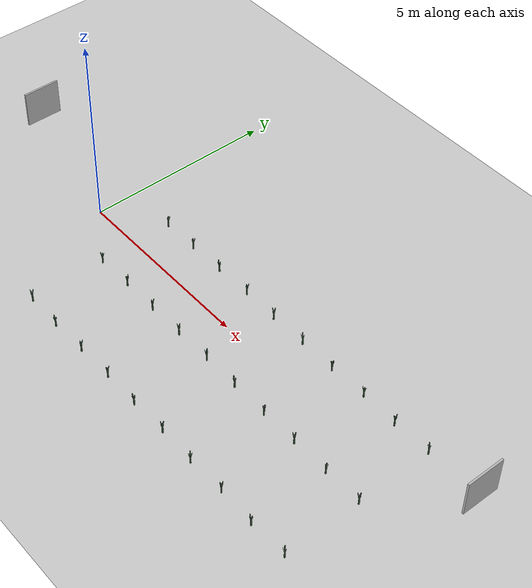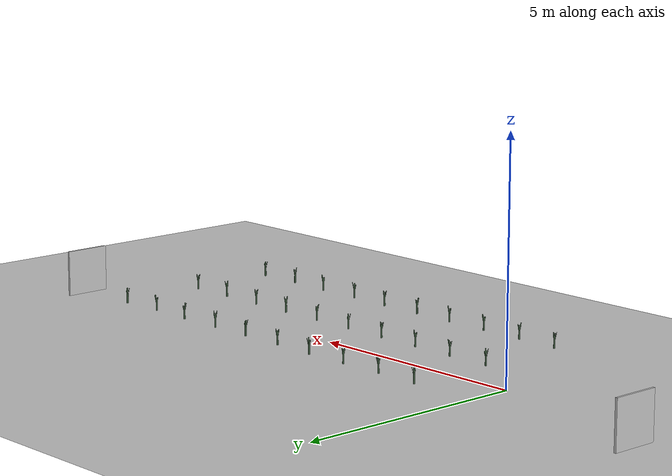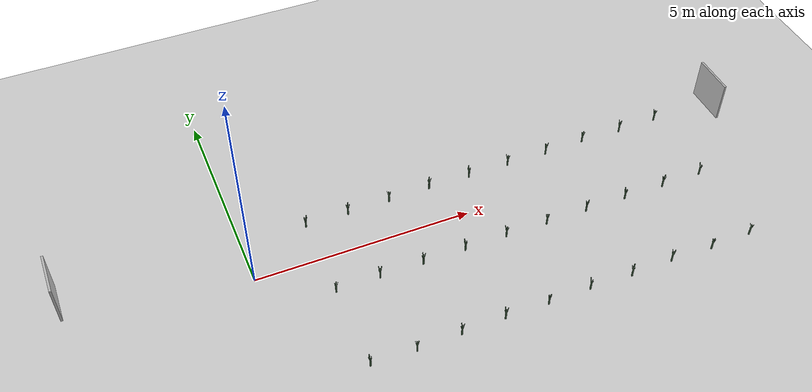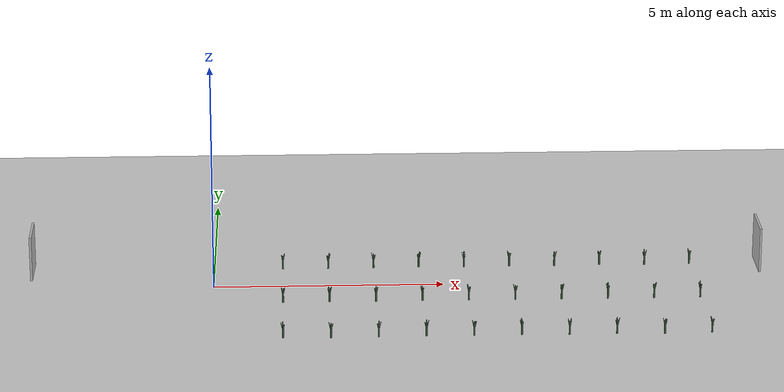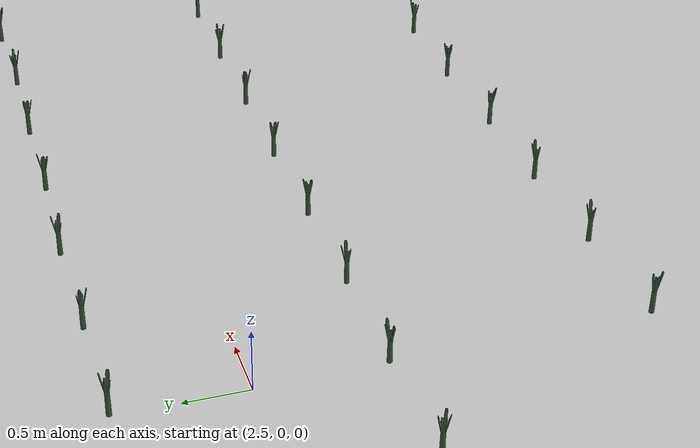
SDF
<sdf version="1.6">
 <world name="default">
  <light name="sun" type="directional">
   <pose>0 0 10 0 -0 0</pose>
   <diffuse>0.5 0.5 0.5 1</diffuse>
   <specular>0.1 0.1 0.1 1</specular>
   <attenuation>
    <range>1000</range>
    <constant>0.9</constant>
    <linear>0.01</linear>
    <quadratic>0.001</quadratic>
   </attenuation>
   <direction>0.9 0.5 -1</direction>
  </light>
  <scene><background>130 200 255 1</background><ambient>130 140 140 1</ambient></scene>
  <include><uri>model://Sign</uri><pose>12 1 0 0 0 0</pose><static>1</static></include>
  <include><uri>model://Sign</uri><pose>-4 1 0 0 0 0</pose><static>1</static></include>
  <include><uri>model://dirt_plane</uri></include>
  <include><uri>model://Leek</uri><pose>1.500000 0.992219 0.15 0 0 -70.024664</pose><static>0</static></include>
  <include>
   <uri>model://Leek</uri>
   <pose>2.500000 0.986679 0.15 0 0 -119.887002</pose>
   <static>0</static>
  </include>
  <include><uri>model://Leek</uri><pose>3.500000 0.996845 0.15 0 0 -28.395001</pose><static>0</static></include>
  <include><uri>model://Leek</uri><pose>4.500000 1.015305 0.15 0 0 137.748081</pose><static>0</static></include>
  <include><uri>model://Leek</uri><pose>5.500000 0.989701 0.15 0 0 -92.688969</pose><static>0</static></include>
  <include><uri>model://Leek</uri><pose>6.500000 0.996800 0.15 0 0 -28.801219</pose><static>0</static></include>
  <include>
   <uri>model://Leek</uri>
   <pose>7.500000 0.985856 0.15 0 0 -127.293475</pose>
   <static>0</static>
  </include>
  <include><uri>model://Leek</uri><pose>8.500000 1.018554 0.15 0 0 166.981748</pose><static>0</static></include>
  <include>
   <uri>model://Leek</uri>
   <pose>9.500000 0.986035 0.15 0 0 -125.681358</pose>
   <static>0</static>
  </include>
  <include>
   <uri>model://Leek</uri>
   <pose>10.500000 1.016331 0.15 0 0 146.983296</pose>
   <static>0</static>
  </include>
  <include><uri>model://Leek</uri><pose>1.500000 -0.989085 0.15 0 0 98.234604</pose><static>0</static></include>
  <include>
   <uri>model://Leek</uri>
   <pose>2.500000 -0.986700 0.15 0 0 119.701584</pose>
   <static>0</static>
  </include>
  <include><uri>model://Leek</uri><pose>3.500000 -0.996515 0.15 0 0 31.369206</pose><static>0</static></include>
  <include><uri>model://Leek</uri><pose>4.500000 -0.992812 0.15 0 0 64.690709</pose><static>0</static></include>
  <include>
   <uri>model://Leek</uri>
   <pose>5.500000 -0.982993 0.15 0 0 153.062355</pose>
   <static>0</static>
  </include>
  <include><uri>model://Leek</uri><pose>6.500000 -0.992689 0.15 0 0 65.801556</pose><static>0</static></include>
  <include><uri>model://Leek</uri><pose>7.500000 -0.993171 0.15 0 0 61.458877</pose><static>0</static></include>
  <include><uri>model://Leek</uri><pose>8.500000 -0.999816 0.15 0 0 1.654409</pose><static>0</static></include>
  <include><uri>model://Leek</uri><pose>9.500000 -0.995246 0.15 0 0 42.789442</pose><static>0</static></include>
  <include>
   <uri>model://Leek</uri>
   <pose>10.500000 -0.985147 0.15 0 0 133.681298</pose>
   <static>0</static>
  </include>
  <include><uri>model://Leek</uri><pose>1.500000 -2.989327 0.15 0 0 96.052842</pose><static>0</static></include>
  <include>
   <uri>model://Leek</uri>
   <pose>2.500000 -3.017806 0.15 0 0 -160.258251</pose>
   <static>0</static>
  </include>
  <include>
   <uri>model://Leek</uri>
   <pose>3.500000 -3.001409 0.15 0 0 -12.681760</pose>
   <static>0</static>
  </include>
  <include>
   <uri>model://Leek</uri>
   <pose>4.500000 -2.986736 0.15 0 0 119.376307</pose>
   <static>0</static>
  </include>
  <include><uri>model://Leek</uri><pose>5.500000 -2.999635 0.15 0 0 3.285561</pose><static>0</static></include>
  <include>
   <uri>model://Leek</uri>
   <pose>6.500000 -2.983046 0.15 0 0 152.583984</pose>
   <static>0</static>
  </include>
  <include>
   <uri>model://Leek</uri>
   <pose>7.500000 -3.011782 0.15 0 0 -106.038012</pose>
   <static>0</static>
  </include>
  <include>
   <uri>model://Leek</uri>
   <pose>8.500000 -2.985343 0.15 0 0 131.908787</pose>
   <static>0</static>
  </include>
  <include>
   <uri>model://Leek</uri>
   <pose>9.500000 -3.019891 0.15 0 0 -179.015013</pose>
   <static>0</static>
  </include>
  <include>
   <uri>model://Leek</uri>
   <pose>10.500000 -2.987161 0.15 0 0 115.549090</pose>
   <static>0</static>
  </include>
 </world>
</sdf>

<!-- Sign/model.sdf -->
<sdf version='1.6'>
  <model name='Sign'>
    <link name='link'>
      <pose frame=''>0 0 0 0 -0 0</pose>
      <inertial>
        <mass>1</mass>
        <inertia>
          <ixx>0.166667</ixx>
          <ixy>0</ixy>
          <ixz>0</ixz>
          <iyy>0.166667</iyy>
          <iyz>0</iyz>
          <izz>0.166667</izz>
        </inertia>
        <pose frame=''>0 0 0 0 -0 0</pose>
      </inertial>
      <self_collide>0</self_collide>
      <kinematic>0</kinematic>
      <gravity>1</gravity>
      <visual name='visual'>
        <geometry>
          <box>
            <size>1 0.05 1</size>
          </box>
        </geometry>
        <material>
          <script>
            <uri>model://ground_plane/materials/scripts/my_ground_plane.material</uri>
            <uri>model://ground_plane/materials/textures</uri>
            <name>my_ground_plane/NaioLogo</name>
          </script>
        </material>
        <pose frame=''>0 0 0.5 0 -0 1.57</pose>
        <cast_shadows>1</cast_shadows>
        <transparency>0</transparency>
      </visual>
    </link>
    <static>1</static>
    <allow_auto_disable>1</allow_auto_disable>
  </model>
</sdf>

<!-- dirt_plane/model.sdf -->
<sdf version="1.4">
<model name="dirt_plane">
  <static>true</static>
    <link name="link">
      <collision name="collision">
        <geometry>
          <plane>
            <normal>0 0 1</normal>
            <size>100 100</size>
          </plane>
        </geometry>
        <surface>
          <friction>
            <ode>
              <mu>100</mu>
              <mu2>50</mu2>
            </ode>
          </friction>
        </surface>
      </collision>
      <visual name="visual">
        <cast_shadows>false</cast_shadows>
        <geometry>
          <plane>
            <normal>0 0 1</normal>
            <size>100 100</size>
          </plane>
        </geometry>
        <material>
          <script>
            <uri>model://ground_plane/materials/scripts/my_ground_plane.material</uri>
            <uri>model://ground_plane/materials/textures</uri>
            <name>my_ground_plane/Dirt</name>
          </script>
        </material>
      </visual>
    </link>
  </model>
</sdf>

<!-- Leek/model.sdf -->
<sdf version='1.6'>
  <model name='Leek'>
    <link name='link'>
      <pose frame=''>0 0 0 0 -0 0</pose>
      <inertial>
        <mass>1</mass>
        <inertia>
          <ixx>0.145833</ixx>
          <ixy>0</ixy>
          <ixz>0</ixz>
          <iyy>0.145833</iyy>
          <iyz>0</iyz>
          <izz>0.125</izz>
        </inertia>
        <pose frame=''>0 0 0 0 -0 0</pose>
      </inertial>
      <self_collide>0</self_collide>
      <kinematic>0</kinematic>
      <gravity>1</gravity>
      <visual name='visual'>
        <geometry>
          <mesh>
            <uri>model://Leek/Poireau.dae</uri>
            <scale>1 1 1</scale>
          </mesh>
        </geometry>
        <material>
          <script>
            <name>Gazebo/Grey</name>
            <uri>file://media/materials/scripts/gazebo.material</uri>
          </script>
          <ambient>0.3 0.7 0.4 0</ambient>
          <diffuse>0.2 0.3 0.2 0</diffuse>
          <specular>0 0 0 1</specular>
          <emissive>0 0 0 1</emissive>
          <shader type='vertex'>
            <normal_map>__default__</normal_map>
          </shader>
        </material>
        <pose frame=''>0 0 -0.08 0 -0 0</pose>
        <cast_shadows>1</cast_shadows>
        <transparency>0</transparency>
      </visual>
      <collision name='collision'>
        <laser_retro>0</laser_retro>
        <max_contacts>10</max_contacts>
        <pose frame=''>0 0 0 0 -0 0</pose>
        <geometry>
          <cylinder>
            <radius>0.02</radius>
            <length>0.25</length>
          </cylinder>
        </geometry>
        <surface>
          <friction>
            <ode>
              <mu>1</mu>
              <mu2>1</mu2>
              <fdir1>0 0 0</fdir1>
              <slip1>0</slip1>
              <slip2>0</slip2>
            </ode>
            <torsional>
              <coefficient>1</coefficient>
              <patch_radius>0</patch_radius>
              <surface_radius>0</surface_radius>
              <use_patch_radius>1</use_patch_radius>
              <ode>
                <slip>0</slip>
              </ode>
            </torsional>
          </friction>
          <bounce>
            <restitution_coefficient>0</restitution_coefficient>
            <threshold>1e+06</threshold>
          </bounce>
          <contact>
            <collide_without_contact>0</collide_without_contact>
            <collide_without_contact_bitmask>1</collide_without_contact_bitmask>
            <collide_bitmask>1</collide_bitmask>
            <ode>
              <soft_cfm>0</soft_cfm>
              <soft_erp>0.2</soft_erp>
              <kp>1e+13</kp>
              <kd>1</kd>
              <max_vel>0.01</max_vel>
              <min_depth>0</min_depth>
            </ode>
            <bullet>
              <split_impulse>1</split_impulse>
              <split_impulse_penetration_threshold>-0.01</split_impulse_penetration_threshold>
              <soft_cfm>0</soft_cfm>
              <soft_erp>0.2</soft_erp>
              <kp>1e+13</kp>
              <kd>1</kd>
            </bullet>
          </contact>
        </surface>
      </collision>
    </link>
    <static>0</static>
    <allow_auto_disable>1</allow_auto_disable>
  </model>
</sdf>
